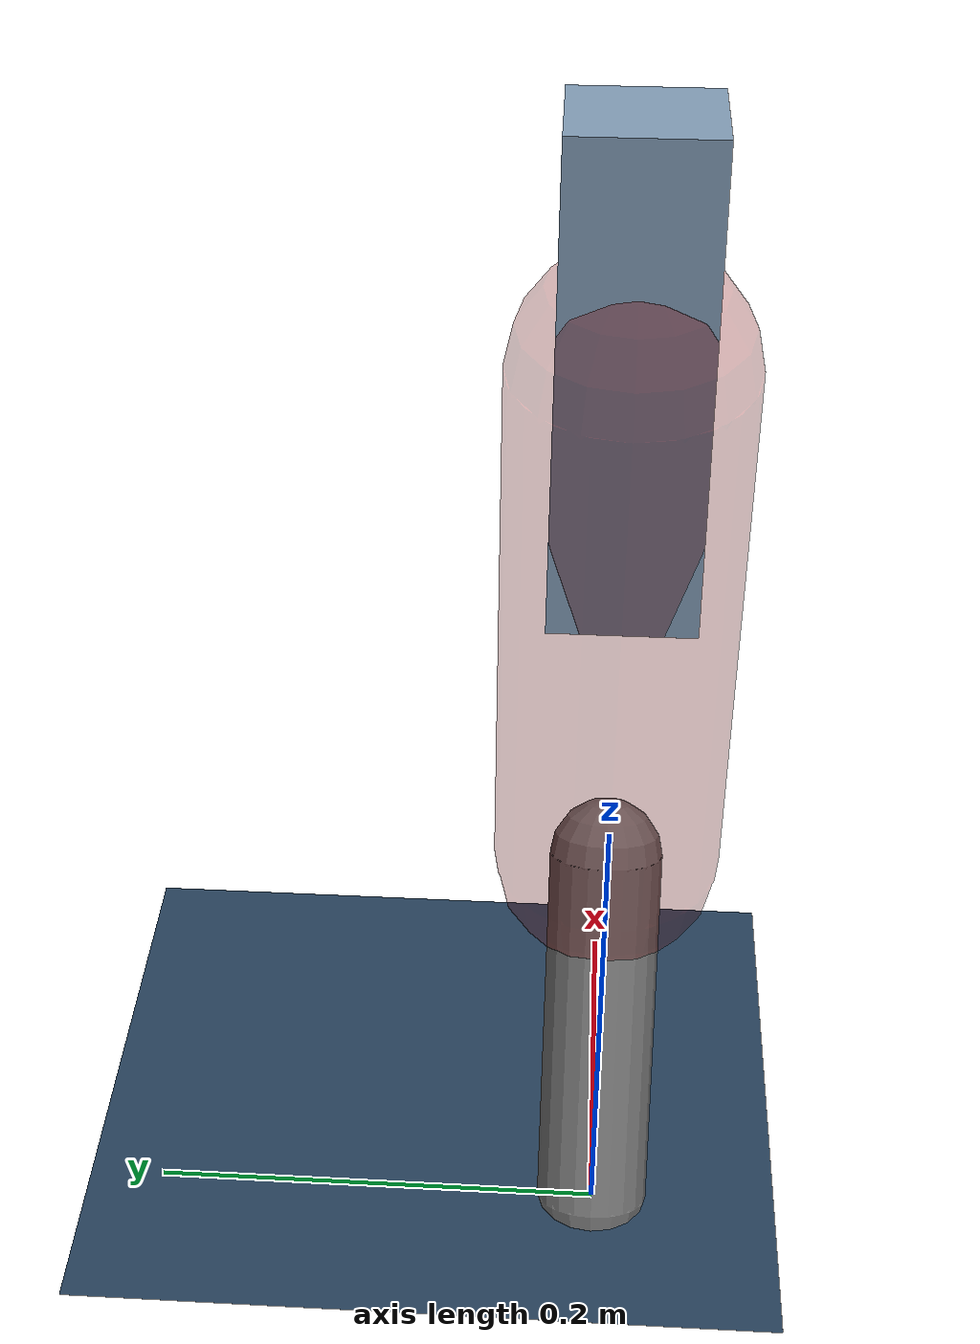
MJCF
<mujoco model="Hopper2D">
	<compiler inertiafromgeom="true" angle="radian" />
	<option timestep="0.001" integrator="implicit" cone="elliptic" solver="Newton" tolerance="1e-10" />

	<default>
		<geom contype="1" conaffinity="1" condim="3" friction="2 0.005 0.0001" solref="0.005 1" />
		<joint limited="true" damping="0.1" />
	</default>

	<asset>
		<texture name="skybox" type="skybox" builtin="gradient" rgb1=".4 .6 .8" rgb2="0 0 0" width="800" height="800" />
		<texture name="grid" type="2d" builtin="checker" rgb1=".1 .2 .3" rgb2=".2 .3 .4" width="300" height="300" mark="edge" markrgb=".2 .3 .4" />
		<material name="ground" texture="grid" texrepeat="1 1" texuniform="true" reflectance="0.1" />
		<material name="leg" rgba="0.5 0.6 0.7 1" />
	</asset>

	<worldbody>

		<geom name="floor" type="plane" size="5 5 0.25" material="ground" />

		<light directional="false" diffuse="0.8 0.8 0.8" specular="0.3 0.3 0.3" pos="0 0 2" dir="0 0 -1" />
		<light mode="targetbodycom" target="base" directional="false" diffuse="0.8 0.8 0.8" specular="0.3 0.3 0.3" pos="0 0 2" dir="0 0 -1" />

		<camera name="fixed" pos="0 -2 1" xyaxes="1 0 0 0 0 1" />
		<camera name="tracking" mode="trackcom" pos="0 -3 1" />

		<body name="root" pos="0 0 0.413120238408587">
			<joint name="slide_x" type="slide" axis="1 0 0" range="-100 100" />
			<joint name="slide_z" type="slide" axis="0 0 1" range="0 10" />

			<body name="base" pos="0 0 0">
				<geom name="torso" type="box" size="0.03 0.03 0.1" mass="1.952" material="leg" />

				<body name="link1" pos="0 0 0" euler="0 1.3957373059715619 0">
					<joint type="hinge" axis="0 -1 0" pos="0 0 0" name="hinge1" limited="true" range="-3.14 3.14" stiffness="0" damping="0.1" />
					<geom name="thigh" type="capsule" fromto="0 0 0 0.2562950098606307 0 0" size="0.05" rgba="0.5 0 0 0.3" mass="0.8727670256376399" />

					<body name="link2" pos="0.2562950098606307 0 0" euler="0 0.4459324219695211 0">
						<joint type="hinge" axis="0 -1 0" pos="0 0 0" name="hinge2" limited="true" range="-3.14 3.14" stiffness="0" damping="0.1" />
						<geom name="shank" type="capsule" fromto="0 0 0 0.16682522854795634 0 0" size="0.025" mass="0.37254270569316067" />

					</body>
				</body>
			</body>
		</body>
	</worldbody>

	<actuator>
		<motor name="torque1" joint="hinge1" ctrlrange="-69.17957402068818 69.17957402068818" ctrllimited="true" gear="1" />
		<motor name="torque2" joint="hinge2" ctrlrange="-47.075296435063684 47.075296435063684" ctrllimited="true" gear="1" />
	</actuator>
</mujoco>
